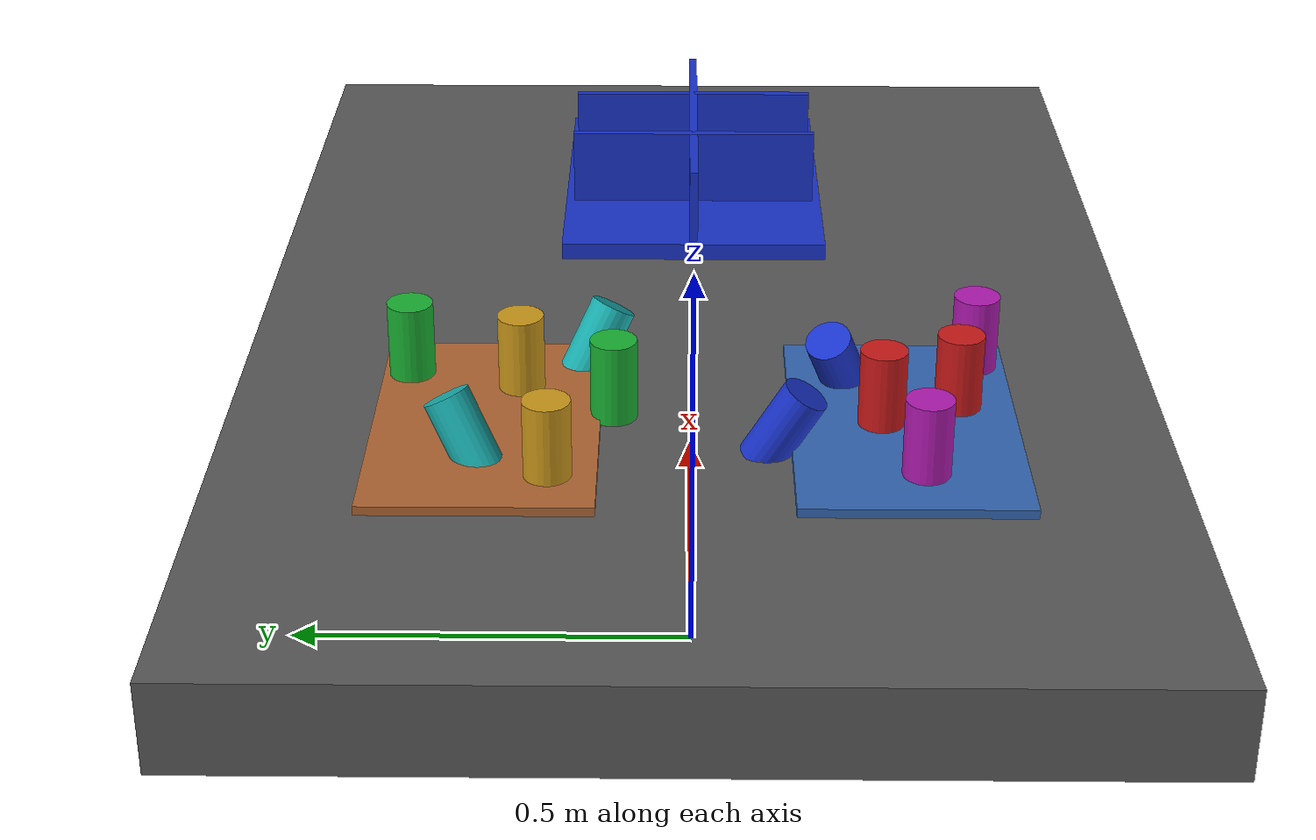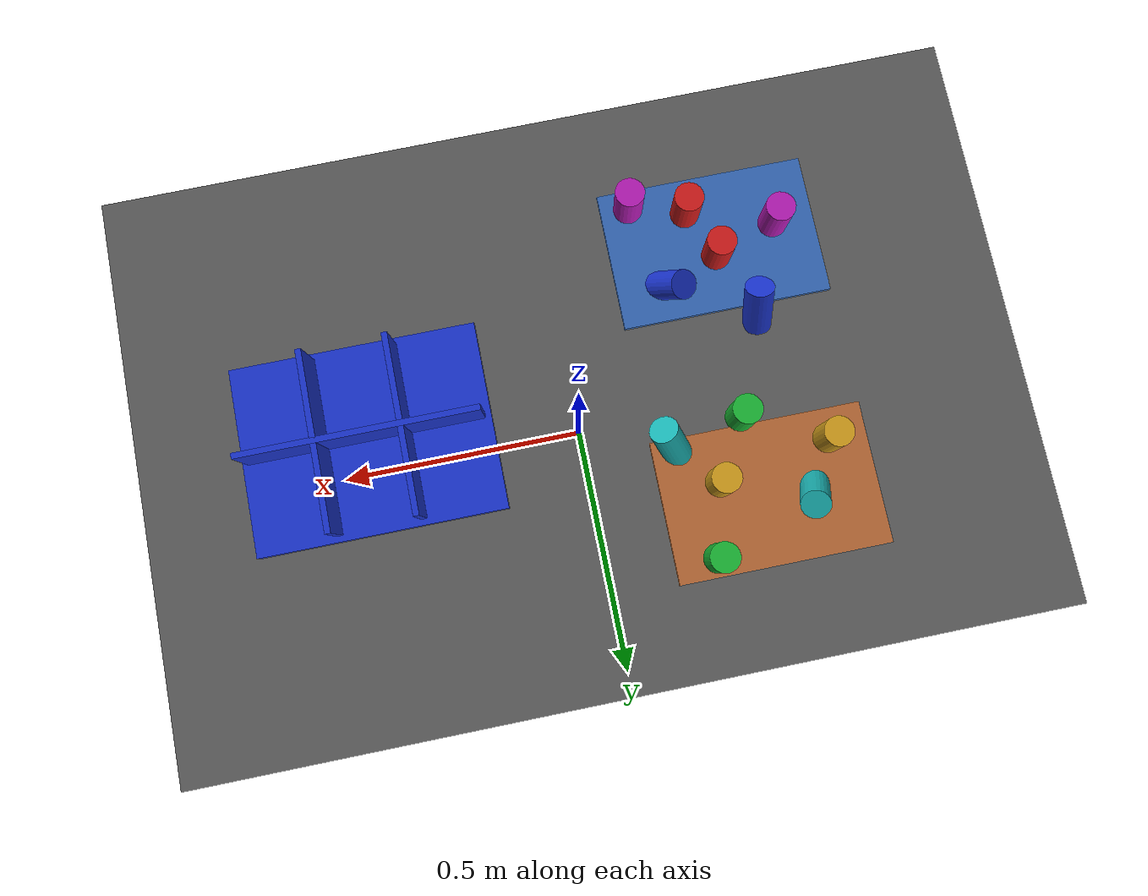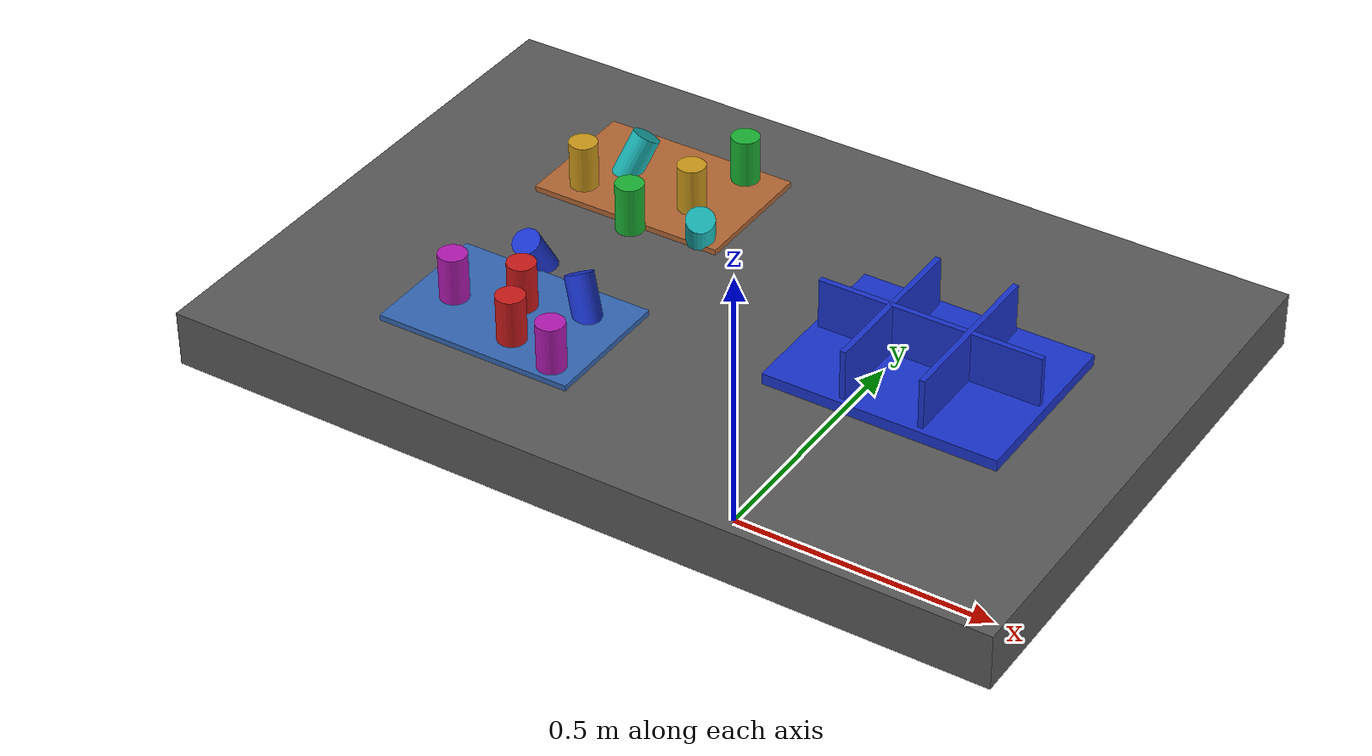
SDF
<?xml version="1.0" ?>
<sdf version="1.9">
  <!-- Standalone M1B scene.  The controller-backed Panda is spawned by the
       existing launch path; this file never alters the frozen M1A cube world. -->
  <world name="industrial_cylinder_v1">
    <physics name="bullet" type="bullet"><max_step_size>0.001</max_step_size><real_time_factor>1.0</real_time_factor></physics>
    <plugin name="gz::sim::systems::Physics" filename="gz-sim-physics-system"><engine><filename>gz-physics-bullet-featherstone-plugin</filename></engine></plugin>
    <plugin name="gz::sim::systems::UserCommands" filename="gz-sim-user-commands-system"/>
    <plugin name="gz::sim::systems::SceneBroadcaster" filename="gz-sim-scene-broadcaster-system"/>
    <plugin name="gz::sim::systems::Sensors" filename="gz-sim-sensors-system"><render_engine>ogre2</render_engine></plugin>
    <gravity>0 0 -9.81</gravity>
    <light type="directional" name="industrial_light"><pose>0 0 5 0 0 0</pose><direction>-0.3 0.2 -0.9</direction><diffuse>0.9 0.9 0.9 1</diffuse></light>
    <model name="industrial_work_table"><static>true</static><link name="link"><pose>0 0 0.4 0 0 0</pose><collision name="collision"><geometry><box><size>1.5 1.0 0.1</size></box></geometry></collision><visual name="visual"><geometry><box><size>1.5 1.0 0.1</size></box></geometry><material><diffuse>0.35 0.35 0.35 1</diffuse></material></visual></link></model>
    <model name="camera_fixture"><static>true</static><link name="camera_rgbd"><pose>-0.80 -0.80 1.40 0 0.77 0.93</pose><sensor name="front_rgbd" type="rgbd_camera"><always_on>1</always_on><update_rate>15</update_rate><topic>/xh/camera/rgbd</topic><camera><horizontal_fov>1.047</horizontal_fov><image><width>640</width><height>480</height><format>R8G8B8</format></image><clip><near>0.1</near><far>4.0</far></clip></camera></sensor></link></model>
    <model name="incoming_zone_a"><static>true</static><link name="link"><pose>-0.28 -0.22 0.455 0 0 0</pose><visual name="visual"><geometry><box><size>0.36 0.24 0.01</size></box></geometry><material><diffuse>0.2 0.4 0.7 1</diffuse></material></visual></link></model>
    <model name="incoming_zone_b"><static>true</static><link name="link"><pose>-0.28 0.22 0.455 0 0 0</pose><visual name="visual"><geometry><box><size>0.36 0.24 0.01</size></box></geometry><material><diffuse>0.7 0.4 0.2 1</diffuse></material></visual></link></model>
    <!-- M1B_RANDOM_PARTS_BEGIN -->
    <model name="cylinder_01"><pose>-0.2429 -0.2799 0.5000 0.0000 0.0000 -2.5538</pose><link name="link"><inertial><mass>0.06</mass></inertial><collision name="collision"><geometry><cylinder><radius>0.025</radius><length>0.09</length></cylinder></geometry></collision><visual name="visual"><geometry><cylinder><radius>0.025</radius><length>0.09</length></cylinder></geometry><material><diffuse>0.800 0.100 0.100 1</diffuse><specular>0.15 0.15 0.15 1</specular></material></visual></link></model>
    <model name="cylinder_02"><pose>-0.1715 0.3086 0.5000 3.1416 0.0000 -1.7944</pose><link name="link"><inertial><mass>0.06</mass></inertial><collision name="collision"><geometry><cylinder><radius>0.025</radius><length>0.09</length></cylinder></geometry></collision><visual name="visual"><geometry><cylinder><radius>0.025</radius><length>0.09</length></cylinder></geometry><material><diffuse>0.100 0.700 0.200 1</diffuse><specular>0.15 0.15 0.15 1</specular></material></visual></link></model>
    <model name="cylinder_03"><pose>-0.3271 -0.0908 0.4800 0.4500 -0.3000 0.4704</pose><link name="link"><inertial><mass>0.06</mass></inertial><collision name="collision"><geometry><cylinder><radius>0.025</radius><length>0.09</length></cylinder></geometry></collision><visual name="visual"><geometry><cylinder><radius>0.025</radius><length>0.09</length></cylinder></geometry><material><diffuse>0.100 0.200 0.800 1</diffuse><specular>0.15 0.15 0.15 1</specular></material></visual></link></model>
    <model name="cylinder_04"><pose>-0.3938 0.1499 0.5000 0.0000 0.0000 1.2343</pose><link name="link"><inertial><mass>0.06</mass></inertial><collision name="collision"><geometry><cylinder><radius>0.025</radius><length>0.09</length></cylinder></geometry></collision><visual name="visual"><geometry><cylinder><radius>0.025</radius><length>0.09</length></cylinder></geometry><material><diffuse>0.800 0.600 0.100 1</diffuse><specular>0.15 0.15 0.15 1</specular></material></visual></link></model>
    <model name="cylinder_05"><pose>-0.3880 -0.2340 0.5000 3.1416 0.0000 -0.1125</pose><link name="link"><inertial><mass>0.06</mass></inertial><collision name="collision"><geometry><cylinder><radius>0.025</radius><length>0.09</length></cylinder></geometry></collision><visual name="visual"><geometry><cylinder><radius>0.025</radius><length>0.09</length></cylinder></geometry><material><diffuse>0.700 0.100 0.700 1</diffuse><specular>0.15 0.15 0.15 1</specular></material></visual></link></model>
    <model name="cylinder_06"><pose>-0.3480 0.2362 0.4800 0.4500 -0.3000 3.1371</pose><link name="link"><inertial><mass>0.06</mass></inertial><collision name="collision"><geometry><cylinder><radius>0.025</radius><length>0.09</length></cylinder></geometry></collision><visual name="visual"><geometry><cylinder><radius>0.025</radius><length>0.09</length></cylinder></geometry><material><diffuse>0.100 0.700 0.700 1</diffuse><specular>0.15 0.15 0.15 1</specular></material></visual></link></model>
    <model name="cylinder_07"><pose>-0.2798 -0.1961 0.5000 0.0000 0.0000 2.6962</pose><link name="link"><inertial><mass>0.06</mass></inertial><collision name="collision"><geometry><cylinder><radius>0.025</radius><length>0.09</length></cylinder></geometry></collision><visual name="visual"><geometry><cylinder><radius>0.025</radius><length>0.09</length></cylinder></geometry><material><diffuse>0.800 0.100 0.100 1</diffuse><specular>0.15 0.15 0.15 1</specular></material></visual></link></model>
    <model name="cylinder_08"><pose>-0.2588 0.0859 0.5000 3.1416 0.0000 0.4452</pose><link name="link"><inertial><mass>0.06</mass></inertial><collision name="collision"><geometry><cylinder><radius>0.025</radius><length>0.09</length></cylinder></geometry></collision><visual name="visual"><geometry><cylinder><radius>0.025</radius><length>0.09</length></cylinder></geometry><material><diffuse>0.100 0.700 0.200 1</diffuse><specular>0.15 0.15 0.15 1</specular></material></visual></link></model>
    <model name="cylinder_09"><pose>-0.1875 -0.1556 0.4800 0.4500 -0.3000 -1.6480</pose><link name="link"><inertial><mass>0.06</mass></inertial><collision name="collision"><geometry><cylinder><radius>0.025</radius><length>0.09</length></cylinder></geometry></collision><visual name="visual"><geometry><cylinder><radius>0.025</radius><length>0.09</length></cylinder></geometry><material><diffuse>0.100 0.200 0.800 1</diffuse><specular>0.15 0.15 0.15 1</specular></material></visual></link></model>
    <model name="cylinder_10"><pose>-0.2015 0.1870 0.5000 0.0000 0.0000 1.8214</pose><link name="link"><inertial><mass>0.06</mass></inertial><collision name="collision"><geometry><cylinder><radius>0.025</radius><length>0.09</length></cylinder></geometry></collision><visual name="visual"><geometry><cylinder><radius>0.025</radius><length>0.09</length></cylinder></geometry><material><diffuse>0.800 0.600 0.100 1</diffuse><specular>0.15 0.15 0.15 1</specular></material></visual></link></model>
    <model name="cylinder_11"><pose>-0.1481 -0.3067 0.5000 3.1416 0.0000 -2.3661</pose><link name="link"><inertial><mass>0.06</mass></inertial><collision name="collision"><geometry><cylinder><radius>0.025</radius><length>0.09</length></cylinder></geometry></collision><visual name="visual"><geometry><cylinder><radius>0.025</radius><length>0.09</length></cylinder></geometry><material><diffuse>0.700 0.100 0.700 1</diffuse><specular>0.15 0.15 0.15 1</specular></material></visual></link></model>
    <model name="cylinder_12"><pose>-0.1343 0.1085 0.4800 0.4500 -0.3000 1.1219</pose><link name="link"><inertial><mass>0.06</mass></inertial><collision name="collision"><geometry><cylinder><radius>0.025</radius><length>0.09</length></cylinder></geometry></collision><visual name="visual"><geometry><cylinder><radius>0.025</radius><length>0.09</length></cylinder></geometry><material><diffuse>0.100 0.700 0.700 1</diffuse><specular>0.15 0.15 0.15 1</specular></material></visual></link></model>
    <!-- M1B_RANDOM_PARTS_END -->
    <model name="blue_partition_bin"><static>true</static><pose>0.36 0 0.45 0 0 0</pose><link name="link"><collision name="floor"><pose>0 0 0.01 0 0 0</pose><geometry><box><size>0.42 0.32 0.02</size></box></geometry></collision><visual name="floor_visual"><pose>0 0 0.01 0 0 0</pose><geometry><box><size>0.42 0.32 0.02</size></box></geometry><material><diffuse>0.1 0.2 0.8 1</diffuse></material></visual><visual name="row_divider"><pose>0 0 0.06 0 0 0</pose><geometry><box><size>0.40 0.01 0.10</size></box></geometry><material><diffuse>0.1 0.2 0.8 1</diffuse></material></visual><visual name="col_divider_a"><pose>-0.07 0 0.06 0 0 0</pose><geometry><box><size>0.01 0.30 0.10</size></box></geometry><material><diffuse>0.1 0.2 0.8 1</diffuse></material></visual><visual name="col_divider_b"><pose>0.07 0 0.06 0 0 0</pose><geometry><box><size>0.01 0.30 0.10</size></box></geometry><material><diffuse>0.1 0.2 0.8 1</diffuse></material></visual></link></model>
    <!-- Reserved only: second table, bin transport corridor, stackable-bin
         collision volume, and second arm mounting namespace. -->
  </world>
</sdf>
